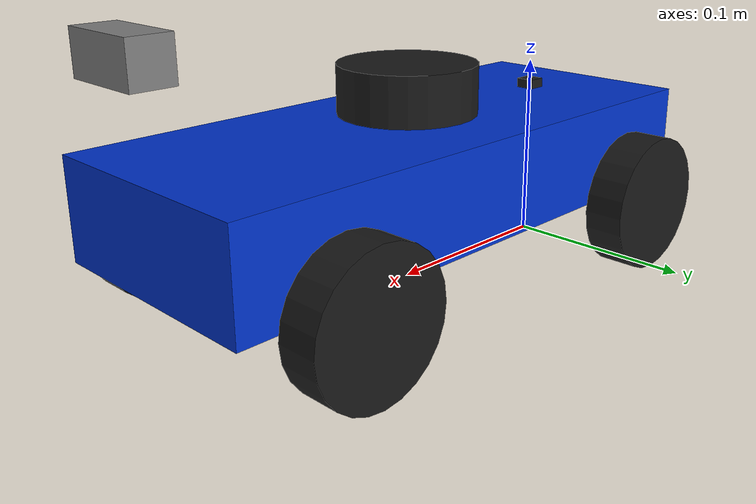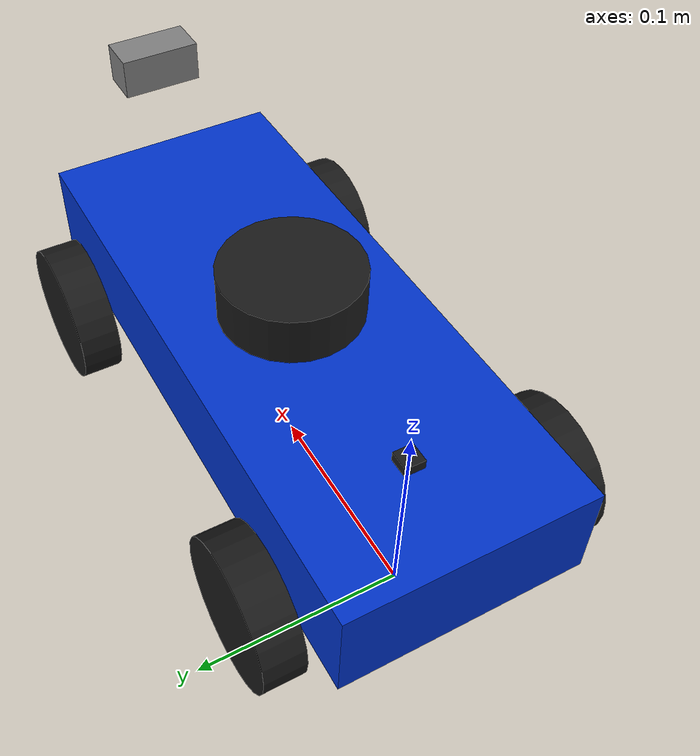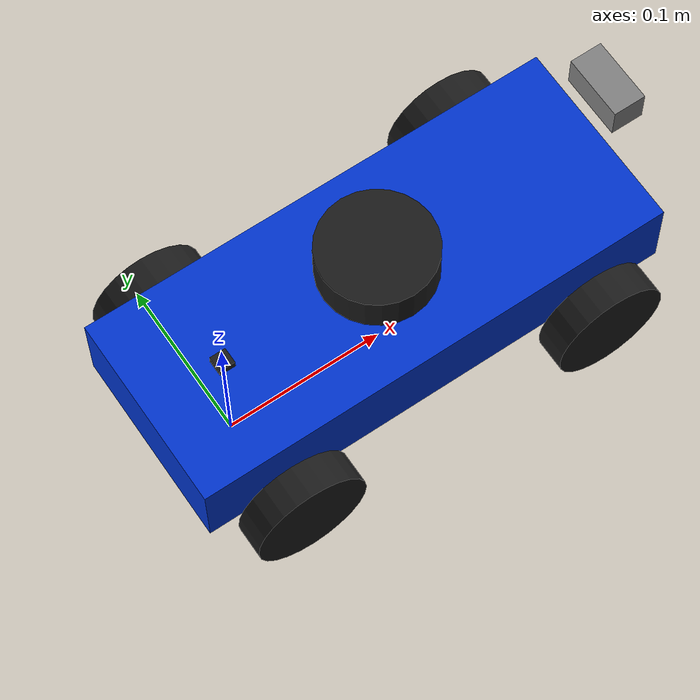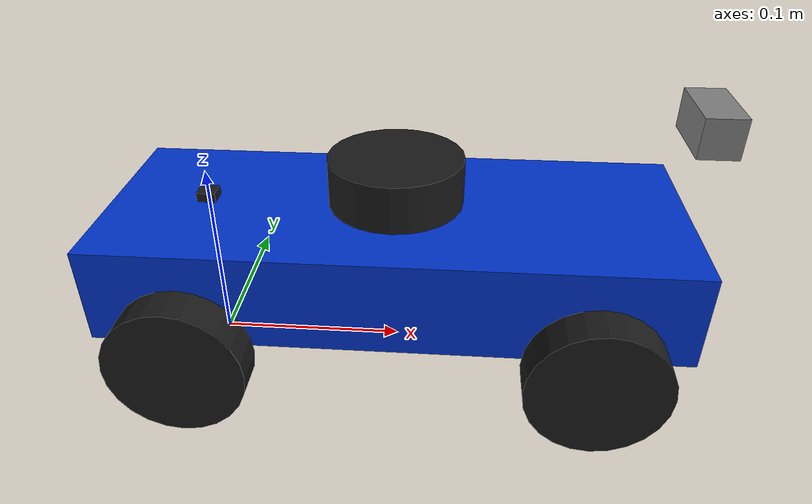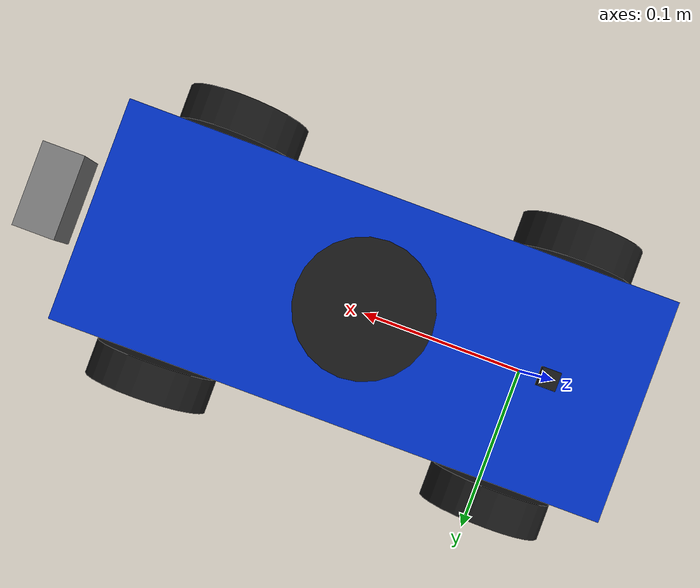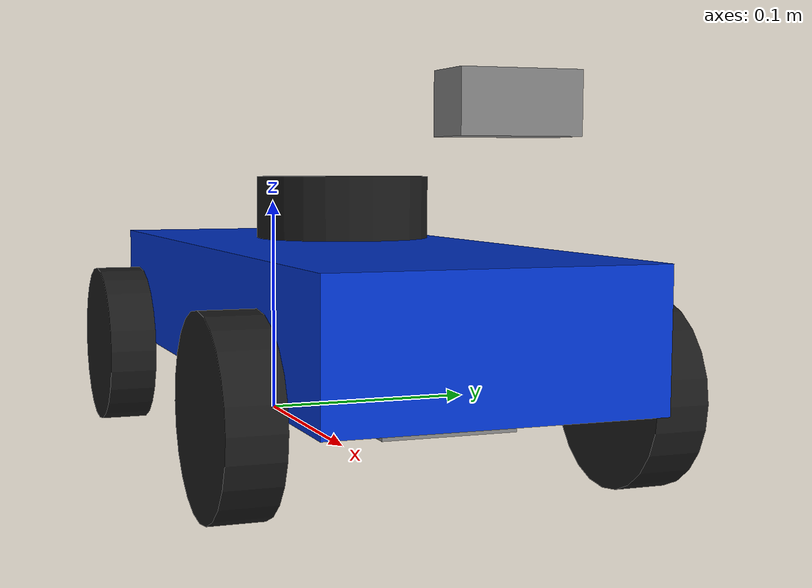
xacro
<?xml version="1.0"?>
<robot xmlns:xacro="http://www.ros.org/wiki/xacro" name="ev_robot">

  <!-- Include core components -->
  <xacro:include filename="$(find robot_description)/urdf/core.xacro"/>

  <!-- Include sensors -->
  <xacro:include filename="$(find robot_description)/urdf/sensors.xacro"/>

  <!--   Gazebo Planar Move Plugin                   -->
  <!--   Bypasses ODE physics for motion.            -->
  <!--   Subscribes to /cmd_vel, publishes /odom.    -->
  <gazebo>
    <plugin name="object_controller" filename="libgazebo_ros_planar_move.so">
      <ros>
        <remapping>cmd_vel:=cmd_vel</remapping>
        <remapping>odom:=wheel_odom</remapping>
      </ros>
      <update_rate>50</update_rate>
      <publish_rate>50</publish_rate>
      <publish_odom>true</publish_odom>
      <publish_odom_tf>false</publish_odom_tf>
      <odometry_frame>odom</odometry_frame>
      <robot_base_frame>base_footprint</robot_base_frame>
    </plugin>

    <!-- Joint state publisher for all joints -->
    <plugin name="gazebo_ros_joint_state_publisher" filename="libgazebo_ros_joint_state_publisher.so">
      <ros>
        <remapping>~/out:=joint_states</remapping>
      </ros>
      <update_rate>30</update_rate>
      <joint_name>rear_left_wheel_joint</joint_name>
      <joint_name>rear_right_wheel_joint</joint_name>
      <joint_name>front_left_wheel_joint</joint_name>
      <joint_name>front_right_wheel_joint</joint_name>
      <joint_name>front_left_steer_joint</joint_name>
      <joint_name>front_right_steer_joint</joint_name>
      <joint_name>steering_joint</joint_name>
    </plugin>
  </gazebo>

</robot>

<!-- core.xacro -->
<robot xmlns:xacro="http://www.ros.org/wiki/xacro">

  <!-- Physical constants -->
  <xacro:property name="wheel_radius" value="0.035"/>
  <xacro:property name="wheel_width" value="0.02"/>
  <xacro:property name="wheelbase" value="0.20"/>
  <xacro:property name="track_width" value="0.15"/>
  <xacro:property name="chassis_length" value="0.30"/>
  <xacro:property name="chassis_width" value="0.12"/>
  <xacro:property name="chassis_height" value="0.05"/>
  <!-- Base link offset so rear axle is at x=0 -->
  <xacro:property name="chassis_x_offset" value="${chassis_length/2 - 0.05}"/>

  <!-- Materials -->
  <material name="blue">
    <color rgba="0 0.2 0.8 1"/>
  </material>
  <material name="black">
    <color rgba="0.1 0.1 0.1 1"/>
  </material>
  <material name="grey">
    <color rgba="0.5 0.5 0.5 1"/>
  </material>

  <!-- Base footprint (on the ground) — thin collision plate for ground contact -->
  <link name="base_footprint">
    <collision>
      <origin xyz="0.1 0 0" rpy="0 0 0"/>
      <geometry>
        <box size="0.30 0.16 0.005"/>
      </geometry>
    </collision>
  </link>

  <!-- Gazebo base_footprint — low friction so it slides freely (planar_move handles motion) -->
  <gazebo reference="base_footprint">
    <mu1>0.0</mu1>
    <mu2>0.0</mu2>
    <kp>1000000.0</kp>
    <kd>100.0</kd>
    <minDepth>0.001</minDepth>
    <maxVel>0.0</maxVel>
  </gazebo>

  <!-- Base Link (chassis) -->
  <joint name="base_joint" type="fixed">
    <parent link="base_footprint"/>
    <child link="base_link"/>
    <origin xyz="0 0 ${wheel_radius}" rpy="0 0 0"/>
  </joint>

  <link name="base_link">
    <visual>
      <origin xyz="${chassis_x_offset} 0 ${chassis_height/2}" rpy="0 0 0"/>
      <geometry>
        <box size="${chassis_length} ${chassis_width} ${chassis_height}"/>
      </geometry>
      <material name="blue"/>
    </visual>
    <collision>
      <origin xyz="${chassis_x_offset} 0 ${chassis_height/2}" rpy="0 0 0"/>
      <geometry>
        <box size="${chassis_length} ${chassis_width} ${chassis_height}"/>
      </geometry>
    </collision>
    <inertial>
      <origin xyz="${chassis_x_offset} 0 ${chassis_height/2}" rpy="0 0 0"/>
      <mass value="2.0"/>
      <inertia ixx="0.00281" ixy="0" ixz="0" iyy="0.0154" iyz="0" izz="0.0174"/>
    </inertial>
  </link>

  <!-- Gazebo chassis properties -->
  <gazebo reference="base_link">
    <mu1>0.2</mu1>
    <mu2>0.2</mu2>
    <material>Gazebo/Blue</material>
  </gazebo>

  <!--  Wheel macro — VISUAL ONLY, no collision.                     -->
  <!--  The planar_move plugin handles all motion; wheel collisions  -->
  <!--  cause ODE LCP instability and are unnecessary.               -->
  <xacro:macro name="wheel" params="prefix suffix x y">
    <link name="${prefix}_${suffix}_wheel">
      <visual>
        <origin xyz="0 0 0" rpy="${pi/2} 0 0"/>
        <geometry>
          <cylinder radius="${wheel_radius}" length="${wheel_width}"/>
        </geometry>
        <material name="black"/>
      </visual>
      <!-- No collision — planar_move handles motion -->
      <inertial>
        <origin xyz="0 0 0" rpy="0 0 0"/>
        <mass value="0.1"/>
        <inertia ixx="0.0001" ixy="0" ixz="0" iyy="0.0001" iyz="0" izz="0.0002"/>
      </inertial>
    </link>

    <gazebo reference="${prefix}_${suffix}_wheel">
      <material>Gazebo/DarkGrey</material>
    </gazebo>
  </xacro:macro>

  <!--  Steer macro — lightweight inertia-only link for steering     -->
  <xacro:macro name="steer_link" params="prefix suffix x y">
    <link name="${prefix}_${suffix}_steer_link">
      <inertial>
        <origin xyz="0 0 0" rpy="0 0 0"/>
        <mass value="0.1"/>
        <inertia ixx="0.0001" ixy="0" ixz="0" iyy="0.0001" iyz="0" izz="0.0001"/>
      </inertial>
    </link>
    <joint name="${prefix}_${suffix}_steer_joint" type="revolute">
      <parent link="base_link"/>
      <child link="${prefix}_${suffix}_steer_link"/>
      <origin xyz="${x} ${y} 0" rpy="0 0 0"/>
      <axis xyz="0 0 1"/>
      <limit lower="-0.6" upper="0.6" effort="5.0" velocity="2.0"/>
      <dynamics damping="0.5" friction="0.1"/>
    </joint>
  </xacro:macro>

  <!-- Rear Wheels (driven) -->
  <xacro:wheel prefix="rear" suffix="left" x="0" y="${track_width/2}"/>
  <joint name="rear_left_wheel_joint" type="continuous">
    <parent link="base_link"/>
    <child link="rear_left_wheel"/>
    <origin xyz="0 ${track_width/2} 0" rpy="0 0 0"/>
    <axis xyz="0 1 0"/>
    <dynamics damping="0.1" friction="0.0"/>
  </joint>

  <xacro:wheel prefix="rear" suffix="right" x="0" y="${-track_width/2}"/>
  <joint name="rear_right_wheel_joint" type="continuous">
    <parent link="base_link"/>
    <child link="rear_right_wheel"/>
    <origin xyz="0 ${-track_width/2} 0" rpy="0 0 0"/>
    <axis xyz="0 1 0"/>
    <dynamics damping="0.1" friction="0.0"/>
  </joint>

  <!-- Front Wheels (steered) -->
  <xacro:steer_link prefix="front" suffix="left" x="${wheelbase}" y="${track_width/2}"/>
  <xacro:wheel prefix="front" suffix="left" x="0" y="0"/>
  <joint name="front_left_wheel_joint" type="continuous">
    <parent link="front_left_steer_link"/>
    <child link="front_left_wheel"/>
    <origin xyz="0 0 0" rpy="0 0 0"/>
    <axis xyz="0 1 0"/>
    <dynamics damping="0.1" friction="0.0"/>
  </joint>

  <xacro:steer_link prefix="front" suffix="right" x="${wheelbase}" y="${-track_width/2}"/>
  <xacro:wheel prefix="front" suffix="right" x="0" y="0"/>
  <joint name="front_right_wheel_joint" type="continuous">
    <parent link="front_right_steer_link"/>
    <child link="front_right_wheel"/>
    <origin xyz="0 0 0" rpy="0 0 0"/>
    <axis xyz="0 1 0"/>
    <dynamics damping="0.1" friction="0.0"/>
  </joint>

  <!-- Dummy explicit steering joint to satisfy requirements -->
  <link name="steering_link">
    <visual>
      <geometry>
        <box size="0.02 0.05 0.02"/>
      </geometry>
      <material name="grey"/>
    </visual>
    <inertial>
      <mass value="0.1"/>
      <inertia ixx="0.0001" ixy="0" ixz="0" iyy="0.0001" iyz="0" izz="0.0001"/>
    </inertial>
  </link>
  <joint name="steering_joint" type="revolute">
    <parent link="base_link"/>
    <child link="steering_link"/>
    <origin xyz="${wheelbase} 0 0" rpy="0 0 0"/>
    <axis xyz="0 0 1"/>
    <mimic joint="front_left_steer_joint" multiplier="1.0" offset="0"/>
    <limit lower="-0.6" upper="0.6" effort="5.0" velocity="2.0"/>
    <dynamics damping="0.5" friction="0.1"/>
  </joint>

</robot>

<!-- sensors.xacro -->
<robot xmlns:xacro="http://www.ros.org/wiki/xacro">

  <!-- ================= IMU ================= -->
  <link name="imu_link">
    <visual>
      <geometry>
        <box size="0.01 0.01 0.01"/>
      </geometry>
      <material name="black"/>
    </visual>
  </link>
  <joint name="imu_joint" type="fixed">
    <parent link="base_link"/>
    <child link="imu_link"/>
    <origin xyz="0 0 0.05" rpy="0 0 0"/>
  </joint>

  <gazebo reference="imu_link">
    <sensor name="imu_sensor" type="imu">
      <plugin filename="libgazebo_ros_imu_sensor.so" name="imu_plugin">
        <ros>
          <remapping>~/out:=/imu</remapping>
        </ros>
        <initial_orientation_as_reference>false</initial_orientation_as_reference>
      </plugin>
      <always_on>true</always_on>
      <update_rate>100</update_rate>
    </sensor>
  </gazebo>

  <!-- ================= LIDAR (RPLidar A1M8) ================= -->
  <link name="laser_link">
    <visual>
      <origin xyz="0 0 0" rpy="0 0 0"/>
      <geometry>
        <cylinder radius="0.035" length="0.025"/>
      </geometry>
      <material name="black"/>
    </visual>
    <inertial>
      <origin xyz="0 0 0" rpy="0 0 0"/>
      <mass value="0.15"/>
      <inertia ixx="0.00005" ixy="0" ixz="0" iyy="0.00005" iyz="0" izz="0.00009"/>
    </inertial>
  </link>
  <joint name="laser_joint" type="fixed">
    <parent link="base_link"/>
    <child link="laser_link"/>
    <!-- Mount on top of chassis, centered -->
    <origin xyz="${chassis_x_offset} 0 ${chassis_height + 0.015}" rpy="0 0 0"/>
  </joint>

  <gazebo reference="laser_link">
    <sensor name="rplidar_a1" type="ray">
      <pose>0 0 0 0 0 0</pose>
      <visualize>true</visualize>
      <always_on>true</always_on>
      <update_rate>10</update_rate>
      <ray>
        <scan>
          <horizontal>
            <samples>360</samples>
            <resolution>1</resolution>
            <min_angle>-3.14159265359</min_angle>
            <max_angle>3.14159265359</max_angle>
          </horizontal>
        </scan>
        <range>
          <min>0.15</min>
          <max>12.0</max>
          <resolution>0.01</resolution>
        </range>
        <noise>
          <type>gaussian</type>
          <mean>0.0</mean>
          <stddev>0.005</stddev>
        </noise>
      </ray>
      <plugin name="gazebo_ros_rplidar" filename="libgazebo_ros_ray_sensor.so">
        <ros>
          <remapping>~/out:=/scan</remapping>
        </ros>
        <output_type>sensor_msgs/LaserScan</output_type>
        <frame_name>laser_link</frame_name>
      </plugin>
    </sensor>
  </gazebo>

  <!-- ================= CAMERA ================= -->
  <link name="camera_link">
    <visual>
      <geometry>
        <box size="0.02 0.04 0.02"/>
      </geometry>
      <material name="grey"/>
    </visual>
  </link>
  <joint name="camera_joint" type="fixed">
    <parent link="base_link"/>
    <child link="camera_link"/>
    <!-- Mount at front of the robot (x=0.25, z=0.1) -->
    <origin xyz="0.25 0 0.1" rpy="0 0 0"/>
  </joint>

  <gazebo reference="camera_link">
    <sensor type="camera" name="camera1">
      <update_rate>30.0</update_rate>
      <camera name="head">
        <horizontal_fov>1.3962634</horizontal_fov>
        <image>
          <width>640</width>
          <height>480</height>
          <format>R8G8B8</format>
        </image>
        <clip>
          <near>0.02</near>
          <far>300</far>
        </clip>
      </camera>
      <plugin name="camera_controller" filename="libgazebo_ros_camera.so">
        <ros>
          <remapping>~/image_raw:=/camera/image_raw</remapping>
          <remapping>~/camera_info:=/camera/camera_info</remapping>
        </ros>
        <camera_name>camera</camera_name>
        <frame_name>camera_link_optical</frame_name>
      </plugin>
    </sensor>
  </gazebo>

  <!-- Optical frame for camera -->
  <link name="camera_link_optical"/>
  <joint name="camera_optical_joint" type="fixed">
    <parent link="camera_link"/>
    <child link="camera_link_optical"/>
    <origin xyz="0 0 0" rpy="${-pi/2} 0 ${-pi/2}"/>
  </joint>

</robot>
